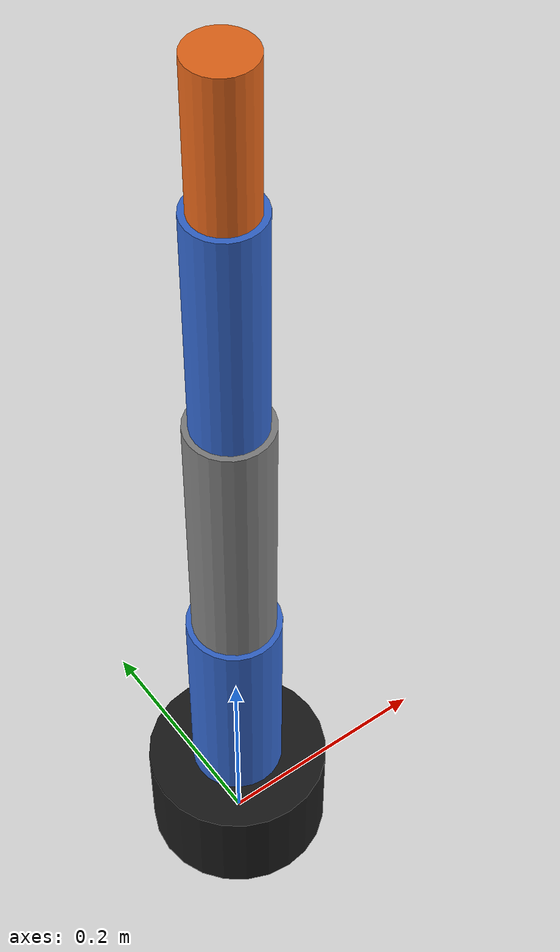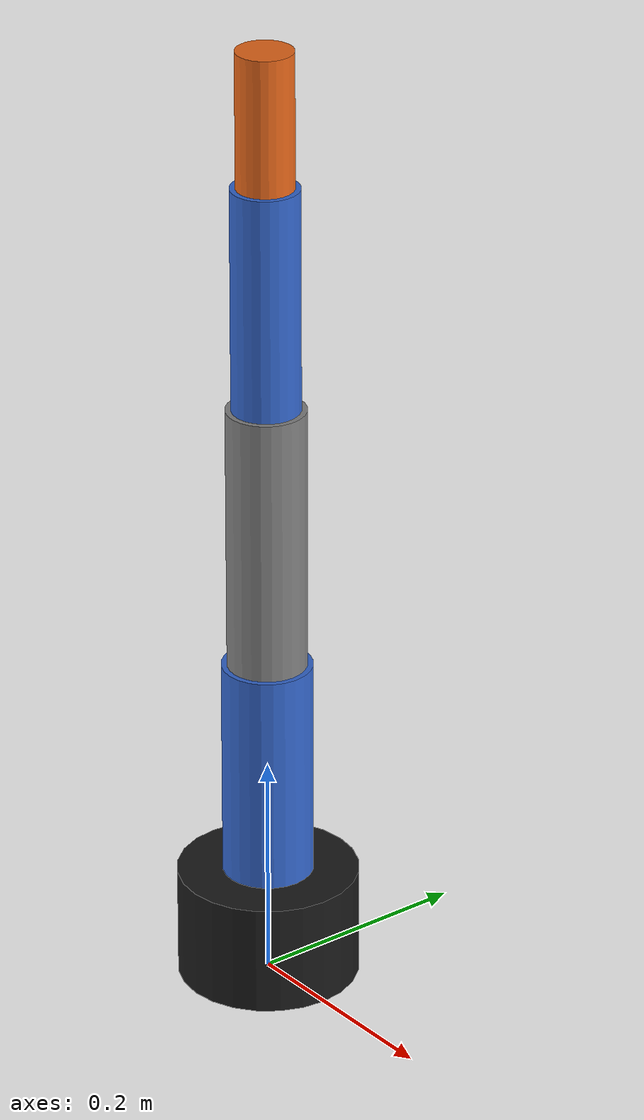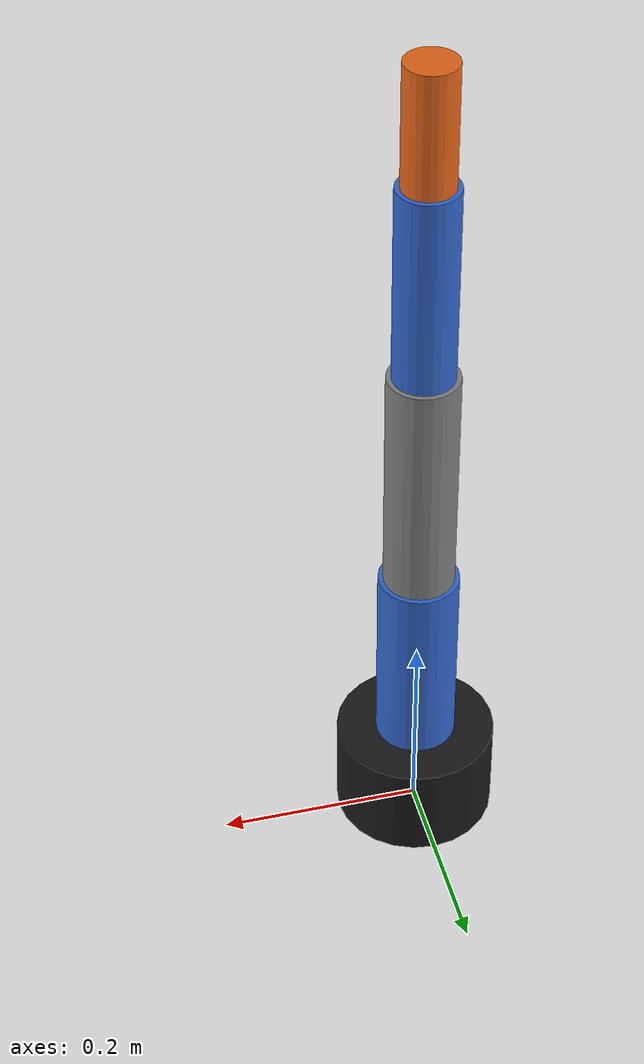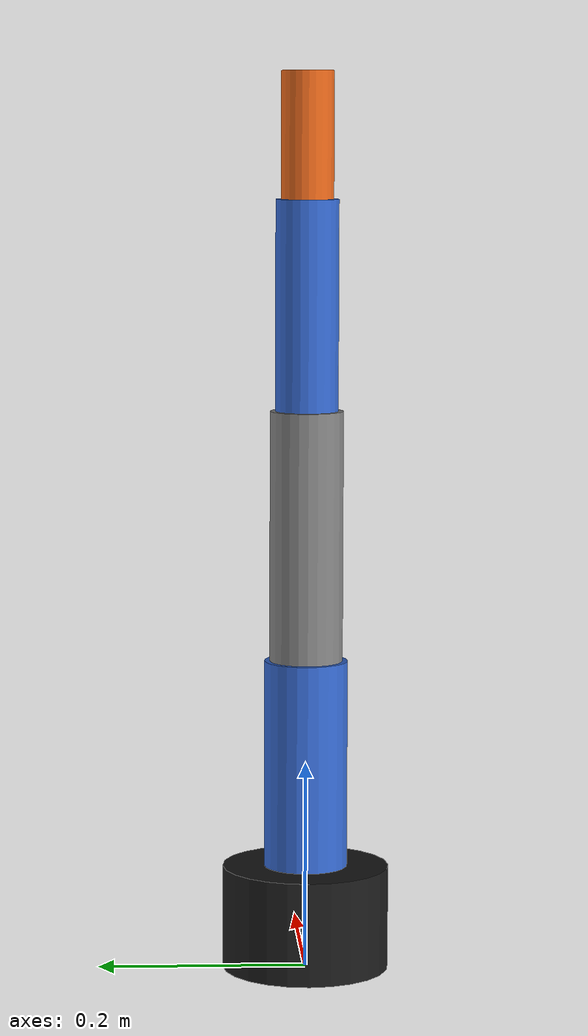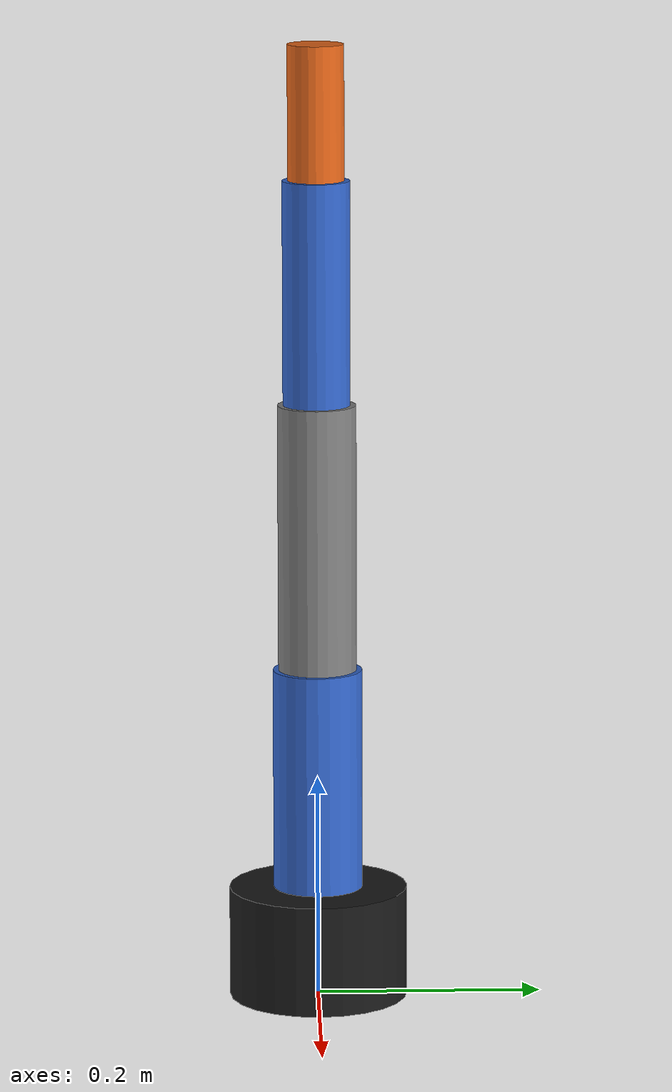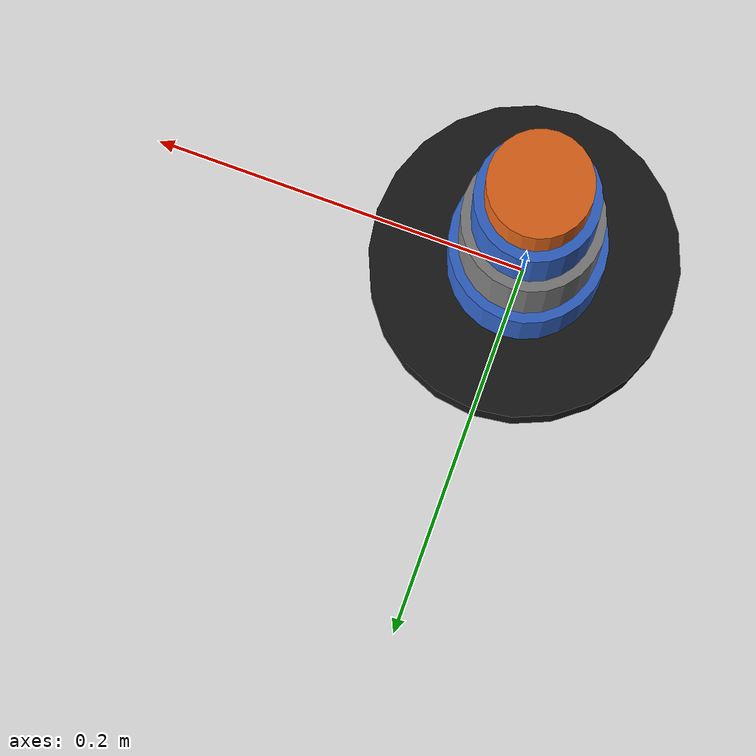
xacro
<?xml version="1.0"?>
<robot name="arm_4dof"
    xmlns:xacro="http://www.ros.org/wiki/xacro">

    <material name="grey">
        <color rgba="0.5 0.5 0.5 1"/>
    </material>
    <material name="blue">
        <color rgba="0.2 0.4 0.8 1"/>
    </material>
    <material name="orange">
        <color rgba="0.9 0.4 0.1 1"/>
    </material>
    <material name="dark">
        <color rgba="0.1 0.1 0.1 1"/>
    </material>

    <xacro:macro name="cylinder_inertia" params="m r h">
        <inertial>
            <mass value="${m}"/>
            <inertia ixx="${m*(3*r*r+h*h)/12}" ixy="0" ixz="0" iyy="${m*(3*r*r+h*h)/12}" iyz="0" izz="${m*r*r/2}"/>
        </inertial>
    </xacro:macro>

    <link name="world"/>

    <joint name="base_joint" type="fixed">
        <parent link="world"/>
        <child link="base_link"/>
        <origin xyz="0 0 0" rpy="0 0 0"/>
    </joint>

    <link name="base_link">
        <visual>
            <origin xyz="0 0 0.05" rpy="0 0 0"/>
            <geometry>
                <cylinder radius="0.08" length="0.10"/>
            </geometry>
            <material name="dark"/>
        </visual>
        <collision>
            <origin xyz="0 0 0.05" rpy="0 0 0"/>
            <geometry>
                <cylinder radius="0.08" length="0.10"/>
            </geometry>
        </collision>
        <xacro:cylinder_inertia m="1.0" r="0.08" h="0.10"/>
    </link>

    <joint name="joint1" type="revolute">
        <parent link="base_link"/>
        <child link="link1"/>
        <origin xyz="0 0 0.10" rpy="0 0 0"/>
        <axis xyz="0 0 1"/>
        <limit effort="10" velocity="1.0" lower="-3.14159" upper="3.14159"/>
        <dynamics damping="0.1" friction="0.1"/>
    </joint>

    <link name="link1">
        <visual>
            <origin xyz="0 0 0.10" rpy="0 0 0"/>
            <geometry>
                <cylinder radius="0.04" length="0.20"/>
            </geometry>
            <material name="blue"/>
        </visual>
        <collision>
            <origin xyz="0 0 0.10" rpy="0 0 0"/>
            <geometry>
                <cylinder radius="0.04" length="0.20"/>
            </geometry>
        </collision>
        <xacro:cylinder_inertia m="0.5" r="0.04" h="0.20"/>
    </link>

    <joint name="joint2" type="revolute">
        <parent link="link1"/>
        <child link="link2"/>
        <origin xyz="0 0 0.20" rpy="0 0 0"/>
        <axis xyz="0 1 0"/>
        <limit effort="10" velocity="1.0" lower="-1.5708" upper="1.5708"/>
        <dynamics damping="0.1" friction="0.1"/>
    </joint>

    <link name="link2">
        <visual>
            <origin xyz="0 0 0.12" rpy="0 0 0"/>
            <geometry>
                <cylinder radius="0.035" length="0.24"/>
            </geometry>
            <material name="grey"/>
        </visual>
        <collision>
            <origin xyz="0 0 0.12" rpy="0 0 0"/>
            <geometry>
                <cylinder radius="0.035" length="0.24"/>
            </geometry>
        </collision>
        <xacro:cylinder_inertia m="0.4" r="0.035" h="0.24"/>
    </link>

    <joint name="joint3" type="revolute">
        <parent link="link2"/>
        <child link="link3"/>
        <origin xyz="0 0 0.24" rpy="0 0 0"/>
        <axis xyz="0 1 0"/>
        <limit effort="10" velocity="1.0" lower="-1.5708" upper="1.5708"/>
        <dynamics damping="0.1" friction="0.1"/>
    </joint>

    <link name="link3">
        <visual>
            <origin xyz="0 0 0.10" rpy="0 0 0"/>
            <geometry>
                <cylinder radius="0.03" length="0.20"/>
            </geometry>
            <material name="blue"/>
        </visual>
        <collision>
            <origin xyz="0 0 0.10" rpy="0 0 0"/>
            <geometry>
                <cylinder radius="0.03" length="0.20"/>
            </geometry>
        </collision>
        <xacro:cylinder_inertia m="0.3" r="0.03" h="0.20"/>
    </link>

    <joint name="joint4" type="revolute">
        <parent link="link3"/>
        <child link="link4"/>
        <origin xyz="0 0 0.20" rpy="0 0 0"/>
        <axis xyz="0 1 0"/>
        <limit effort="5" velocity="1.0" lower="-1.5708" upper="1.5708"/>
        <dynamics damping="0.05" friction="0.05"/>
    </joint>

    <link name="link4">
        <visual>
            <origin xyz="0 0 0.06" rpy="0 0 0"/>
            <geometry>
                <cylinder radius="0.025" length="0.12"/>
            </geometry>
            <material name="orange"/>
        </visual>
        <collision>
            <origin xyz="0 0 0.06" rpy="0 0 0"/>
            <geometry>
                <cylinder radius="0.025" length="0.12"/>
            </geometry>
        </collision>
        <xacro:cylinder_inertia m="0.2" r="0.025" h="0.12"/>
    </link>

    <joint name="ee_joint" type="fixed">
        <parent link="link4"/>
        <child link="ee_link"/>
        <origin xyz="0 0 0.12" rpy="0 0 0"/>
    </joint>
    <link name="ee_link"/>

    <gazebo reference="base_link">
        <material>Gazebo/DarkGrey</material>
    </gazebo>
    <gazebo reference="link1">
        <material>Gazebo/Blue</material>
    </gazebo>
    <gazebo reference="link2">
        <material>Gazebo/Grey</material>
    </gazebo>
    <gazebo reference="link3">
        <material>Gazebo/Blue</material>
    </gazebo>
    <gazebo reference="link4">
        <material>Gazebo/Orange</material>
    </gazebo>

    <gazebo>
        <plugin name="gazebo_ros2_control" filename="libgazebo_ros2_control.so">
            <parameters>$(find arm_description)/config/arm_controllers.yaml</parameters>
        </plugin>
    </gazebo>

    <ros2_control name="arm_hardware" type="system">
        <hardware>
            <plugin>gazebo_ros2_control/GazeboSystem</plugin>
        </hardware>
        <joint name="joint1">
            <command_interface name="position">
                <param name="min">-3.14159</param>
                <param name="max">3.14159</param>
            </command_interface>
            <state_interface name="position"/>
            <state_interface name="velocity"/>
        </joint>
        <joint name="joint2">
            <command_interface name="position">
                <param name="min">-1.5708</param>
                <param name="max">1.5708</param>
            </command_interface>
            <state_interface name="position"/>
            <state_interface name="velocity"/>
        </joint>
        <joint name="joint3">
            <command_interface name="position">
                <param name="min">-1.5708</param>
                <param name="max">1.5708</param>
            </command_interface>
            <state_interface name="position"/>
            <state_interface name="velocity"/>
        </joint>
        <joint name="joint4">
            <command_interface name="position">
                <param name="min">-1.5708</param>
                <param name="max">1.5708</param>
            </command_interface>
            <state_interface name="position"/>
            <state_interface name="velocity"/>
        </joint>
    </ros2_control>

</robot>
